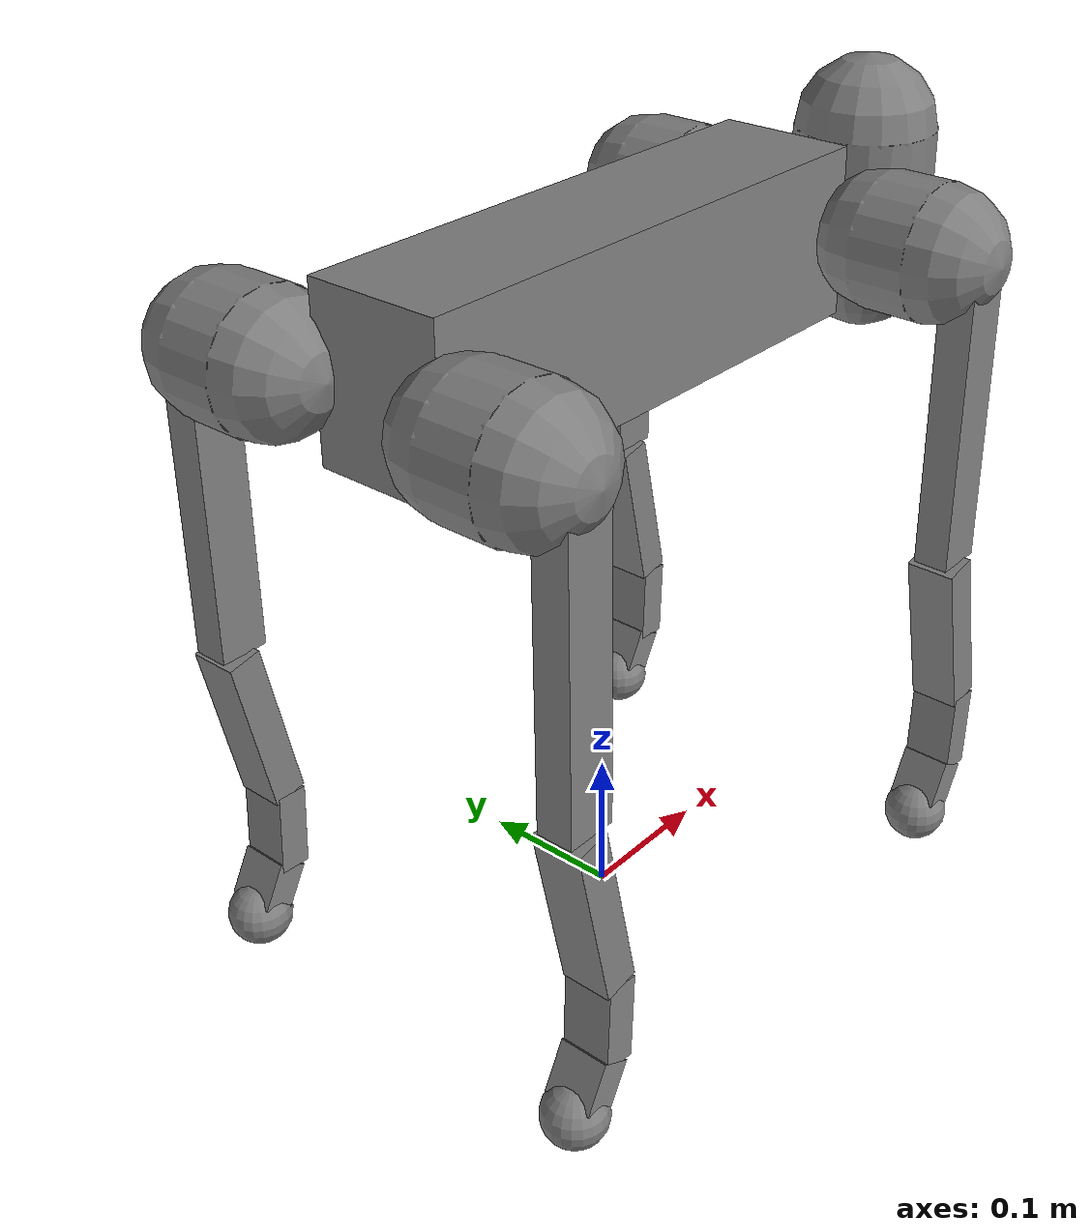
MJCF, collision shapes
<?xml version='1.0' encoding='utf-8'?>
<mujoco model="go2_description">
    <compiler angle="radian" autolimits="true" />

    <option cone="elliptic" impratio="100" />

    <default>
        <default class="go2">
            <joint axis="0 1 0" />
            <geom friction="0.6" margin="0.001" contype="0" conaffinity="0" />
            <default class="abduction">
                <joint axis="1 0 0" range="-1.0472 1.0472" />
            </default>
            <default class="hip">
                <default class="front_hip">
                    <joint range="-1.5708 3.4907" />
                </default>
                <default class="back_hip">
                    <joint range="-0.5236 4.5379" />
                </default>
            </default>
            <default class="knee">
                <joint range="-2.7227 -0.83776" />
                </default>
            <default class="visual">
                <geom type="mesh" contype="0" conaffinity="0" group="2" />
            </default>
            <default class="collision">
                <geom group="3" contype="0" conaffinity="0" />
            </default>
        </default>
    </default>

    <asset>
        <material name="metal" rgba=".9 .95 .95 1" />
        <material name="black" rgba="0 0 0 1" />
        <material name="white" rgba="1 1 1 1" />
        <material name="gray" rgba="0.671705 0.692426 0.774270 1" />

        <mesh file="/home/roy/sysID_go2_docker_env/sim2real-robot-identification/robot_model/go2/assets/base_0.obj" />
        <mesh file="/home/roy/sysID_go2_docker_env/sim2real-robot-identification/robot_model/go2/assets/base_1.obj" />
        <mesh file="/home/roy/sysID_go2_docker_env/sim2real-robot-identification/robot_model/go2/assets/base_2.obj" />
        <mesh file="/home/roy/sysID_go2_docker_env/sim2real-robot-identification/robot_model/go2/assets/base_3.obj" />
        <mesh file="/home/roy/sysID_go2_docker_env/sim2real-robot-identification/robot_model/go2/assets/base_4.obj" />
        <mesh file="/home/roy/sysID_go2_docker_env/sim2real-robot-identification/robot_model/go2/assets/hip_0.obj" />
        <mesh file="/home/roy/sysID_go2_docker_env/sim2real-robot-identification/robot_model/go2/assets/hip_1.obj" />
        <mesh file="/home/roy/sysID_go2_docker_env/sim2real-robot-identification/robot_model/go2/assets/thigh_0.obj" />
        <mesh file="/home/roy/sysID_go2_docker_env/sim2real-robot-identification/robot_model/go2/assets/thigh_1.obj" />
        <mesh file="/home/roy/sysID_go2_docker_env/sim2real-robot-identification/robot_model/go2/assets/thigh_mirror_0.obj" />
        <mesh file="/home/roy/sysID_go2_docker_env/sim2real-robot-identification/robot_model/go2/assets/thigh_mirror_1.obj" />
        <mesh file="/home/roy/sysID_go2_docker_env/sim2real-robot-identification/robot_model/go2/assets/calf_0.obj" />
        <mesh file="/home/roy/sysID_go2_docker_env/sim2real-robot-identification/robot_model/go2/assets/calf_1.obj" />
        <mesh file="/home/roy/sysID_go2_docker_env/sim2real-robot-identification/robot_model/go2/assets/calf_mirror_0.obj" />
        <mesh file="/home/roy/sysID_go2_docker_env/sim2real-robot-identification/robot_model/go2/assets/calf_mirror_1.obj" />
        <mesh file="/home/roy/sysID_go2_docker_env/sim2real-robot-identification/robot_model/go2/assets/foot.obj" />
    </asset>

    <worldbody>
        <body name="base" pos="0 0 0.445" childclass="go2">
            <inertial pos="0.021112 0 -0.005366" quat="-0.000543471 0.713435 -0.00173769 0.700719" mass="6.921" diaginertia="0.107027 0.0980771 0.0244531" />
            <geom mesh="base_0" material="black" class="visual" contype="0" conaffinity="0" />
            <geom mesh="base_1" material="black" class="visual" contype="0" conaffinity="0" />
            <geom mesh="base_2" material="black" class="visual" contype="0" conaffinity="0" />
            <geom mesh="base_3" material="white" class="visual" contype="0" conaffinity="0" />
            <geom mesh="base_4" material="gray" class="visual" contype="0" conaffinity="0" />
            <geom size="0.1881 0.04675 0.057" type="box" class="collision" contype="0" conaffinity="0" />
            <geom size="0.05 0.03" pos="0.285 0 0.01" type="capsule" class="collision" contype="0" conaffinity="0" />
            <geom size="0.047" pos="0.293 0 -0.06" class="collision" contype="0" conaffinity="0" />
            <site name="imu" pos="-0.02557 0 0.04232" />
            <body name="FL_hip" pos="0.1934 0.0465 0">
                <inertial pos="-0.0054 0.00194 -0.000105" quat="0.497014 0.499245 0.505462 0.498237" mass="0.678" diaginertia="0.00088403 0.000596003 0.000479967" />
                <joint name="FL_hip_joint" class="abduction" damping="0.1531" armature="0.0010" frictionloss="0.2884" />
                <geom mesh="hip_0" material="metal" class="visual" contype="0" conaffinity="0" />
                <geom mesh="hip_1" material="gray" class="visual" contype="0" conaffinity="0" />
                <geom size="0.046 0.02" pos="0 0.05 0" quat="1 1 0 0" type="capsule" class="collision" contype="0" conaffinity="0" />
                <body name="FL_thigh" pos="0 0.0955 0">
                    <inertial pos="-0.00374 -0.0223 -0.0327" quat="0.829533 0.0847635 -0.0200632 0.551623" mass="1.152" diaginertia="0.00594973 0.00584149 0.000878787" />
                    <joint name="FL_thigh_joint" class="front_hip" damping="0.2406" armature="0.0197" frictionloss="0.1739" />
                    <geom mesh="thigh_0" material="metal" class="visual" contype="0" conaffinity="0" />
                    <geom mesh="thigh_1" material="gray" class="visual" contype="0" conaffinity="0" />
                    <geom size="0.1065 0.01225 0.017" pos="0 0 -0.1065" quat="0.707107 0 0.707107 0" type="box" class="collision" contype="0" conaffinity="0" />
                    <body name="FL_calf" pos="0 0 -0.213">
                        <inertial pos="0.00629595 -0.000622121 -0.141417" quat="0.710672 0.00154099 -0.00450087 0.703508" mass="0.241352" diaginertia="0.0014901 0.00146356 5.31397e-05" />
                        <joint name="FL_calf_joint" class="knee" damping="0.1450" armature="0.0356" frictionloss="1.0151" />
                        <geom mesh="calf_0" material="gray" class="visual" contype="0" conaffinity="0" />
                        <geom mesh="calf_1" material="black" class="visual" contype="0" conaffinity="0" />
                        <geom size="0.012 0.017  0.06" pos="0.008 0 -0.06" quat="0.994493 0 -0.104807 0" type="box" class="collision" contype="0" conaffinity="0" />
                        <geom size="0.011 0.017  0.03" pos="0.02 0 -0.148" quat="0.999688 0 0.0249974 0" type="box" class="collision" contype="0" conaffinity="0" />
                        <geom size="0.011 0.017  0.017" pos="0.008 0 -0.190" quat="0.999688 0 0.249974 0" type="box" class="collision" contype="0" conaffinity="0" />
                        <geom pos="0 0 -0.213" mesh="foot" class="visual" material="black" contype="0" conaffinity="0" />

                        <geom name="FL" class="collision" size="0.022" pos="-0.002 0 -0.213" priority="1" condim="6" friction="0.8 0.02 0.01" contype="0" conaffinity="0" />

                    </body>
                </body>
            </body>
            <body name="FR_hip" pos="0.1934 -0.0465 0">
                <inertial pos="-0.0054 -0.00194 -0.000105" quat="0.498237 0.505462 0.499245 0.497014" mass="0.678" diaginertia="0.00088403 0.000596003 0.000479967" />
                <joint name="FR_hip_joint" class="abduction" damping="0.2628" armature="0.0129" frictionloss="0.1835" />
                <geom mesh="hip_0" material="metal" class="visual" quat="4.63268e-05 1 0 0" contype="0" conaffinity="0" />
                <geom mesh="hip_1" material="gray" class="visual" quat="4.63268e-05 1 0 0" contype="0" conaffinity="0" />
                <geom size="0.046 0.02" pos="0 -0.05 0" quat="0.707107 0.707107 0 0" type="capsule" class="collision" contype="0" conaffinity="0" />
                <body name="FR_thigh" pos="0 -0.0955 0">
                    <inertial pos="-0.00374 0.0223 -0.0327" quat="0.551623 -0.0200632 0.0847635 0.829533" mass="1.152" diaginertia="0.00594973 0.00584149 0.000878787" />
                    <joint name="FR_thigh_joint" class="front_hip" damping="0.1420" armature="0.0135" frictionloss="0.2386" />
                    <geom mesh="thigh_mirror_0" material="metal" class="visual" contype="0" conaffinity="0" />
                    <geom mesh="thigh_mirror_1" material="gray" class="visual" contype="0" conaffinity="0" />
                    <geom size="0.1065 0.01225 0.017" pos="0 0 -0.1065" quat="0.707107 0 0.707107 0" type="box" class="collision" contype="0" conaffinity="0" />
                    <body name="FR_calf" pos="0 0 -0.213">
                        <inertial pos="0.00629595 0.000622121 -0.141417" quat="0.703508 -0.00450087 0.00154099 0.710672" mass="0.241352" diaginertia="0.0014901 0.00146356 5.31397e-05" />
                        <joint name="FR_calf_joint" class="knee" damping="0.1728" armature="0.0371" frictionloss="0.4912" />
                        <geom mesh="calf_mirror_0" material="gray" class="visual" contype="0" conaffinity="0" />
                        <geom mesh="calf_mirror_1" material="black" class="visual" contype="0" conaffinity="0" />
                        <geom size="0.012 0.017  0.06" pos="0.008 0 -0.06" quat="0.994493 0 -0.104807 0" type="box" class="collision" contype="0" conaffinity="0" />
                        <geom size="0.011 0.017  0.03" pos="0.02 0 -0.148" quat="0.999688 0 0.0249974 0" type="box" class="collision" contype="0" conaffinity="0" />
                        <geom size="0.011 0.017  0.017" pos="0.008 0 -0.190" quat="0.999688 0 0.249974 0" type="box" class="collision" contype="0" conaffinity="0" />
                        <geom pos="0 0 -0.213" mesh="foot" class="visual" material="black" contype="0" conaffinity="0" />

                        <geom name="FR" class="collision" size="0.022" pos="-0.002 0 -0.213" priority="1" condim="6" friction="0.8 0.02 0.01" contype="0" conaffinity="0" />

                    </body>
                </body>
            </body>
            <body name="RL_hip" pos="-0.1934 0.0465 0">
                <inertial pos="0.0054 0.00194 -0.000105" quat="0.505462 0.498237 0.497014 0.499245" mass="0.678" diaginertia="0.00088403 0.000596003 0.000479967" />
                <joint name="RL_hip_joint" class="abduction" damping="0.2243" armature="0.0075" frictionloss="0.1550" />
                <geom mesh="hip_0" material="metal" class="visual" quat="4.63268e-05 0 1 0" contype="0" conaffinity="0" />
                <geom mesh="hip_1" material="gray" class="visual" quat="4.63268e-05 0 1 0" contype="0" conaffinity="0" />
                <geom size="0.046 0.02" pos="0 0.05 0" quat="0.707107 0.707107 0 0" type="capsule" class="collision" contype="0" conaffinity="0" />
                <body name="RL_thigh" pos="0 0.0955 0">
                    <inertial pos="-0.00374 -0.0223 -0.0327" quat="0.829533 0.0847635 -0.0200632 0.551623" mass="1.152" diaginertia="0.00594973 0.00584149 0.000878787" />
                    <joint name="RL_thigh_joint" class="back_hip" damping="0.2352" armature="0.0205" frictionloss="0.1388" />
                    <geom mesh="thigh_0" material="metal" class="visual" contype="0" conaffinity="0" />
                    <geom mesh="thigh_1" material="gray" class="visual" contype="0" conaffinity="0" />
                    <geom size="0.1065 0.01225 0.017" pos="0 0 -0.1065" quat="0.707107 0 0.707107 0" type="box" class="collision" contype="0" conaffinity="0" />
                    <body name="RL_calf" pos="0 0 -0.213">
                        <inertial pos="0.00629595 -0.000622121 -0.141417" quat="0.710672 0.00154099 -0.00450087 0.703508" mass="0.241352" diaginertia="0.0014901 0.00146356 5.31397e-05" />
                        <joint name="RL_calf_joint" class="knee" damping="0.1201" armature="0.0228" frictionloss="1.3573" />
                        <geom mesh="calf_0" material="gray" class="visual" contype="0" conaffinity="0" />
                        <geom mesh="calf_1" material="black" class="visual" contype="0" conaffinity="0" />
                        <geom size="0.012 0.017  0.06" pos="0.008 0 -0.06" quat="0.994493 0 -0.104807 0" type="box" class="collision" contype="0" conaffinity="0" />
                        <geom size="0.011 0.017  0.03" pos="0.02 0 -0.148" quat="0.999688 0 0.0249974 0" type="box" class="collision" contype="0" conaffinity="0" />
                        <geom size="0.011 0.017  0.017" pos="0.008 0 -0.190" quat="0.999688 0 0.249974 0" type="box" class="collision" contype="0" conaffinity="0" />
                        <geom pos="0 0 -0.213" mesh="foot" class="visual" material="black" contype="0" conaffinity="0" />

                        <geom name="RL" class="collision" size="0.022" pos="-0.002 0 -0.213" priority="1" condim="6" friction="0.8 0.02 0.01" contype="0" conaffinity="0" />

                    </body>
                </body>
            </body>
            <body name="RR_hip" pos="-0.1934 -0.0465 0">
                <inertial pos="0.0054 -0.00194 -0.000105" quat="0.499245 0.497014 0.498237 0.505462" mass="0.678" diaginertia="0.00088403 0.000596003 0.000479967" />
                <joint name="RR_hip_joint" class="abduction" damping="0.2989" armature="0.0081" frictionloss="0.2488" />
                <geom mesh="hip_0" material="metal" class="visual" quat="2.14617e-09 4.63268e-05 4.63268e-05 -1" contype="0" conaffinity="0" />
                <geom mesh="hip_1" material="gray" class="visual" quat="2.14617e-09 4.63268e-05 4.63268e-05 -1" contype="0" conaffinity="0" />
                <geom size="0.046 0.02" pos="0 -0.05 0" quat="0.707107 0.707107 0 0" type="capsule" class="collision" contype="0" conaffinity="0" />
                <body name="RR_thigh" pos="0 -0.0955 0">
                    <inertial pos="-0.00374 0.0223 -0.0327" quat="0.551623 -0.0200632 0.0847635 0.829533" mass="1.152" diaginertia="0.00594973 0.00584149 0.000878787" />
                    <joint name="RR_thigh_joint" class="back_hip" damping="0.1983" armature="0.0139" frictionloss="0.2484" />
                    <geom mesh="thigh_mirror_0" material="metal" class="visual" contype="0" conaffinity="0" />
                    <geom mesh="thigh_mirror_1" material="gray" class="visual" contype="0" conaffinity="0" />
                    <geom size="0.1065 0.01225 0.017" pos="0 0 -0.1065" quat="0.707107 0 0.707107 0" type="box" class="collision" contype="0" conaffinity="0" />
                    <body name="RR_calf" pos="0 0 -0.213">
                        <inertial pos="0.00629595 0.000622121 -0.141417" quat="0.703508 -0.00450087 0.00154099 0.710672" mass="0.241352" diaginertia="0.0014901 0.00146356 5.31397e-05" />
                        <joint name="RR_calf_joint" class="knee" damping="0.1000" armature="0.0332" frictionloss="0.7893" />
                        <geom mesh="calf_mirror_0" material="gray" class="visual" contype="0" conaffinity="0" />
                        <geom mesh="calf_mirror_1" material="black" class="visual" contype="0" conaffinity="0" />
                        <geom size="0.012 0.017  0.06" pos="0.008 0 -0.06" quat="0.994493 0 -0.104807 0" type="box" class="collision" contype="0" conaffinity="0" />
                        <geom size="0.011 0.017  0.03" pos="0.02 0 -0.148" quat="0.999688 0 0.0249974 0" type="box" class="collision" contype="0" conaffinity="0" />
                        <geom size="0.011 0.017  0.017" pos="0.008 0 -0.190" quat="0.999688 0 0.249974 0" type="box" class="collision" contype="0" conaffinity="0" />
                        <geom pos="0 0 -0.213" mesh="foot" class="visual" material="black" contype="0" conaffinity="0" />

                        <geom name="RR" class="collision" size="0.022" pos="-0.002 0 -0.213" priority="1" condim="6" friction="0.8 0.02 0.01" contype="0" conaffinity="0" />

                    </body>
                </body>
            </body>
        </body>
    </worldbody>

    <actuator>
        <general joint="FL_hip_joint" gear="1" name="FL_hip" biastype="affine" gainprm="20" biasprm="0 -20 -1" /><general joint="FL_thigh_joint" gear="1" name="FL_thigh" biastype="affine" gainprm="20" biasprm="0 -20 -1" /><general joint="FL_calf_joint" gear="1" name="FL_calf" biastype="affine" gainprm="40" biasprm="0 -40 -2" /><general joint="FR_hip_joint" gear="1" name="FR_hip" biastype="affine" gainprm="20" biasprm="0 -20 -1" /><general joint="FR_thigh_joint" gear="1" name="FR_thigh" biastype="affine" gainprm="20" biasprm="0 -20 -1" /><general joint="FR_calf_joint" gear="1" name="FR_calf" biastype="affine" gainprm="40" biasprm="0 -40 -2" /><general joint="RL_hip_joint" gear="1" name="RL_hip" biastype="affine" gainprm="20" biasprm="0 -20 -1" /><general joint="RL_thigh_joint" gear="1" name="RL_thigh" biastype="affine" gainprm="20" biasprm="0 -20 -1" /><general joint="RL_calf_joint" gear="1" name="RL_calf" biastype="affine" gainprm="40" biasprm="0 -40 -2" /><general joint="RR_hip_joint" gear="1" name="RR_hip" biastype="affine" gainprm="20" biasprm="0 -20 -1" /><general joint="RR_thigh_joint" gear="1" name="RR_thigh" biastype="affine" gainprm="20" biasprm="0 -20 -1" /><general joint="RR_calf_joint" gear="1" name="RR_calf" biastype="affine" gainprm="40" biasprm="0 -40 -2" /></actuator>

    <sensor>
        <jointpos name="joint_FL_hip_joint_pos" joint="FL_hip_joint" />
        <jointpos name="joint_FL_thigh_joint_pos" joint="FL_thigh_joint" />
        <jointpos name="joint_FL_calf_joint_pos" joint="FL_calf_joint" />
        <jointpos name="joint_FR_hip_joint_pos" joint="FR_hip_joint" />
        <jointpos name="joint_FR_thigh_joint_pos" joint="FR_thigh_joint" />
        <jointpos name="joint_FR_calf_joint_pos" joint="FR_calf_joint" />
        <jointpos name="joint_RL_hip_joint_pos" joint="RL_hip_joint" />
        <jointpos name="joint_RL_thigh_joint_pos" joint="RL_thigh_joint" />
        <jointpos name="joint_RL_calf_joint_pos" joint="RL_calf_joint" />
        <jointpos name="joint_RR_hip_joint_pos" joint="RR_hip_joint" />
        <jointpos name="joint_RR_thigh_joint_pos" joint="RR_thigh_joint" />
        <jointpos name="joint_RR_calf_joint_pos" joint="RR_calf_joint" />
    </sensor>

    <visual><global offwidth="960" offheight="540" /></visual></mujoco>
